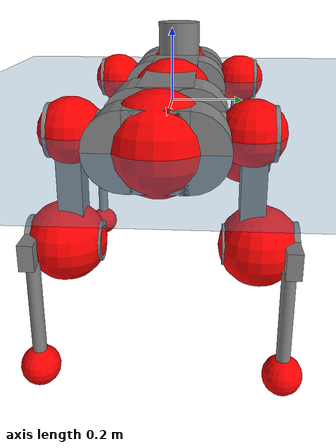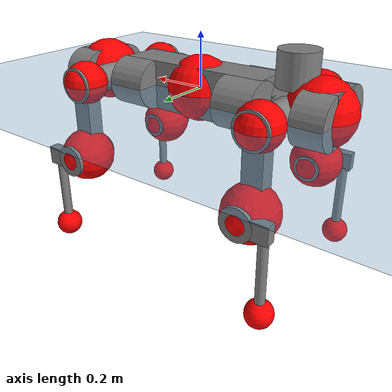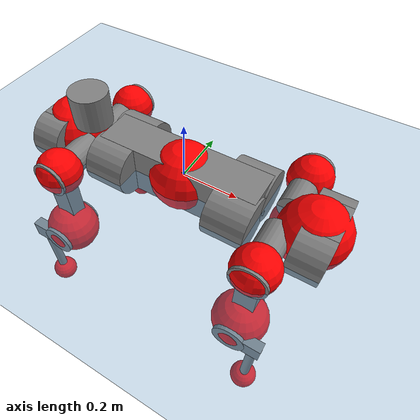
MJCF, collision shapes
<mujoco model="anymal_c">
  <compiler angle="radian" assetdir="assets" balanceinertia="true" inertiafromgeom="false"/>

  <option timestep="0.005" density="1.2" viscosity="2e-05"/>

  <size nkey="1"/>

  <visual>
    <quality shadowsize="8192"/>
    <map shadowclip="0.5"/>
  </visual>

  <default>
    <default class="/">
      <material specular="0" shininess="0.25"/>
      <geom contype="0" conaffinity="0" group="1" solref="-1000 -80"/>
      <site size="0.01 0.005 0.005" group="5"/>
      <general forcelimited="true" forcerange="-80 80" biastype="affine" gainprm="80" biasprm="0 -80 -2"/>
      <default class="anymal_c">
        <joint armature="0.01" damping="0.01" frictionloss="0.1"/>
        <default class="visual">
          <geom type="mesh" group="2"/>
          <default class="visual_zflip"/>
        </default>
        <default class="collision">
          <geom type="cylinder" group="3"/>
          <default class="foot">
            <geom size="0.03 0 0" type="sphere" condim="6" priority="1" friction="0.8 0.02 0.01" solimp="0.015 1 0.03"/>
          </default>
        </default>
      </default>
      <default class="reward_collision_sphere">
        <geom group="5" rgba="1 0 0 1"/>
      </default>
    </default>
  </default>

  <asset>
    <texture type="skybox" colorspace="auto" name="//unnamed_texture_0" builtin="gradient" rgb1="0.95 0.95 0.95" rgb2="0.95 0.95 0.95" width="100" height="600"/>
    <texture type="2d" colorspace="auto" name="texplane" builtin="checker" rgb1="0.345 0.575 0.748" rgb2="0.345 0.575 0.748" markrgb="1 1 1" width="512" height="512"/>
    <texture type="2d" colorspace="linear" name="base" file="base.png"/>
    <texture type="2d" colorspace="linear" name="top_shell" file="top_shell.png"/>
    <texture type="2d" colorspace="linear" name="bottom_shell" file="bottom_shell.png"/>
    <texture type="2d" colorspace="linear" name="remote" file="remote.png"/>
    <texture type="2d" colorspace="linear" name="hatch" file="hatch.png"/>
    <texture type="2d" colorspace="linear" name="handle" file="handle.png"/>
    <texture type="2d" colorspace="linear" name="face" file="face.png"/>
    <texture type="2d" colorspace="linear" name="battery" file="battery.png"/>
    <texture type="2d" colorspace="linear" name="lidar_cage" file="lidar_cage.png"/>
    <texture type="2d" colorspace="linear" name="depth_camera" file="depth_camera.png"/>
    <texture type="2d" colorspace="linear" name="wide_angle_camera" file="wide_angle_camera.png"/>
    <texture type="2d" colorspace="linear" name="lidar" file="lidar.png"/>
    <texture type="2d" colorspace="linear" name="drive" file="drive.png"/>
    <texture type="2d" colorspace="linear" name="hip_l" file="hip_l.png"/>
    <texture type="2d" colorspace="linear" name="shank_l" file="shank_l.png"/>
    <texture type="2d" colorspace="linear" name="foot" file="foot.png"/>
    <texture type="2d" colorspace="linear" name="thigh" file="thigh.png"/>
    <texture type="2d" colorspace="linear" name="shank_r" file="shank_r.png"/>
    <texture type="2d" colorspace="linear" name="hip_r" file="hip_r.png"/>
    <material name="MatPlane" class="/" texture="texplane" texuniform="true" texrepeat="2 2" specular="0.9" shininess="0.5"/>
    <material name="black_plastic" class="/" rgba="0.007 0.007 0.007 1"/>
    <material name="green" class="/" rgba="0.052 0.178 0.033 1"/>
    <material name="red" class="/" rgba="0.178 0.006 0.005 1"/>
    <material name="yellow" class="/" rgba="0.178 0.119 0.006 1"/>
    <material name="lwl" class="/" rgba="0.8 0.8 0.8 1"/>
    <material name="base" class="/" texture="base"/>
    <material name="top_shell" class="/" texture="top_shell"/>
    <material name="bottom_shell" class="/" texture="bottom_shell"/>
    <material name="hip_l" class="/" texture="hip_l"/>
    <material name="thigh" class="/" texture="thigh"/>
    <material name="shank_l" class="/" texture="shank_l"/>
    <material name="foot" class="/" texture="foot"/>
    <material name="hip_r" class="/" texture="hip_r"/>
    <material name="shank" class="/" texture="shank_r"/>
    <material name="hatch" class="/" texture="hatch"/>
    <material name="remote" class="/" texture="remote"/>
    <material name="handle" class="/" texture="handle"/>
    <material name="face" class="/" texture="face"/>
    <material name="depth_camera" class="/" texture="depth_camera"/>
    <material name="wide_angle_camera" class="/" texture="wide_angle_camera"/>
    <material name="battery" class="/" texture="battery"/>
    <material name="lidar_cage" class="/" texture="lidar_cage"/>
    <material name="lidar" class="/" texture="lidar"/>
    <material name="drive" class="/" texture="drive"/>
    <mesh name="base_0" class="/" file="base_0.obj"/>
    <mesh name="base_1" class="/" file="base_1.obj"/>
    <mesh name="base_2" class="/" file="base_2.obj"/>
    <mesh name="base_3" class="/" file="base_3.obj"/>
    <mesh name="base_4" class="/" file="base_4.obj"/>
    <mesh name="base_5" class="/" file="base_5.obj"/>
    <mesh name="top_shell" class="/" file="top_shell.obj"/>
    <mesh name="bottom_shell" class="/" file="bottom_shell.obj"/>
    <mesh name="remote" class="/" file="remote.obj"/>
    <mesh name="handle" class="/" file="handle.obj"/>
    <mesh name="face" class="/" file="face.obj"/>
    <mesh name="wide_angle_camera" class="/" file="wide_angle_camera.obj"/>
    <mesh name="depth_camera" class="/" file="depth_camera.obj"/>
    <mesh name="battery" class="/" file="battery.obj"/>
    <mesh name="lidar_cage" class="/" file="lidar_cage.obj"/>
    <mesh name="lidar" class="/" file="lidar.obj"/>
    <mesh name="drive" class="/" file="drive.obj"/>
    <mesh name="hip_l" class="/" file="hip_l.obj"/>
    <mesh name="thigh" class="/" file="thigh.obj"/>
    <mesh name="shank_l" class="/" file="shank_l.obj"/>
    <mesh name="foot" class="/" file="foot.obj"/>
    <mesh name="hip_r" class="/" file="hip_r.obj"/>
    <mesh name="hatch" class="/" file="hatch.obj"/>
    <mesh name="shank_r" class="/" file="shank_r.obj"/>
  </asset>

  <worldbody>
    <geom name="floor" class="/" size="100 100 0.125" type="plane" group="0" material="MatPlane"/>
    <light name="toplight_shadow" class="/" pos="0 0 5" dir="0.0990148 0.0990148 -0.990148" type="directional" ambient="0.04 0.04 0.04" diffuse="0.55 0.55 0.55" specular="0.12 0.12 0.12"/>
    <light name="toplight_fill" class="/" pos="0 0 5" dir="0.0990148 0.0990148 -0.990148" type="directional" castshadow="false" ambient="0.04 0.04 0.04" diffuse="0.3 0.3 0.3" specular="0.08 0.08 0.08"/>
    <body name="trunk" childclass="anymal_c" pos="0.000236033 -9.82268e-05 -0.000792957" quat="1 -0.000261318 -0.000298111 0.00029615">
      <inertial pos="0.000386004 -0.0010612 0.0486797" quat="0.499978 0.50019 0.499593 0.500238" mass="18.7785" diaginertia="0.728227 0.526532 0.190226"/>
      <joint name="//unnamed_joint_0" type="free" armature="0" damping="0" frictionloss="0"/>
      <geom name="//unnamed_geom_1" class="visual" material="green" mesh="base_0"/>
      <geom name="//unnamed_geom_2" class="visual" material="yellow" mesh="base_1"/>
      <geom name="//unnamed_geom_3" class="visual" material="red" mesh="base_2"/>
      <geom name="//unnamed_geom_4" class="visual" material="black_plastic" mesh="base_3"/>
      <geom name="//unnamed_geom_5" class="visual" material="lwl" mesh="base_4"/>
      <geom name="//unnamed_geom_6" class="visual" material="base" mesh="base_5"/>
      <geom name="trunk_1" class="collision" size="0.286944 0.0692625 0.0890517" type="box"/>
      <geom name="trunk_2" class="collision" size="0.0890517 0.0717361" pos="0.223425 0.067698 0" quat="0.707107 0 0.707107 0"/>
      <geom name="trunk_3" class="collision" size="0.0890517 0.0717361" pos="-0.223425 0.067698 0" quat="0.707107 0 0.707107 0"/>
      <geom name="trunk_4" class="collision" size="0.0890517 0.0717361" pos="0.223425 -0.067698 0" quat="0.707107 0 0.707107 0"/>
      <geom name="trunk_5" class="collision" size="0.0890517 0.0717361" pos="-0.223425 -0.067698 0" quat="0.707107 0 0.707107 0"/>
      <geom name="//unnamed_geom_12" class="visual" material="top_shell" mesh="top_shell"/>
      <geom name="//unnamed_geom_13" class="visual" material="bottom_shell" mesh="bottom_shell"/>
      <geom name="//unnamed_geom_14" class="visual" material="remote" mesh="remote"/>
      <geom name="//unnamed_geom_15" class="visual" material="handle" mesh="handle"/>
      <geom name="//unnamed_geom_16" class="visual" pos="0.425791 0 0" quat="1 0 0 0" material="face" mesh="face"/>
      <geom name="trunk_6" class="collision" size="0.0544205 0.0692625 0.0890517" pos="0.482289 0 0" type="box"/>
      <geom name="//unnamed_geom_18" class="collision" size="0.0890517 0.0544205" pos="0.482289 0.067698 0" quat="0.707107 0 0.707107 0"/>
      <geom name="//unnamed_geom_19" class="collision" size="0.0890517 0.0544205" pos="0.482289 -0.067698 0" quat="0.707107 0 0.707107 0"/>
      <geom name="//unnamed_geom_20" class="visual" pos="0.474223 0 -0.0280375" quat="0.965926 0 0.258819 0" material="depth_camera" mesh="depth_camera"/>
      <geom name="//unnamed_geom_21" class="visual" pos="0.526974 0 0.0145813" material="wide_angle_camera" mesh="wide_angle_camera"/>
      <geom name="//unnamed_geom_22" class="visual_zflip" pos="-0.425791 0 0" quat="0 0 0 1" material="face" mesh="face"/>
      <geom name="trunk_7" class="collision" size="0.0544205 0.0692625 0.0890517" pos="-0.482289 0 0" quat="0 0 0 1" type="box"/>
      <geom name="//unnamed_geom_24" class="collision" size="0.0890517 0.0544205" pos="-0.482289 -0.067698 0" quat="0 -0.707107 0 0.707107"/>
      <geom name="//unnamed_geom_25" class="collision" size="0.0890517 0.0544205" pos="-0.482289 0.067698 0" quat="0 -0.707107 0 0.707107"/>
      <geom name="//unnamed_geom_26" class="visual" pos="-0.474223 0 -0.0280375" quat="0 -0.258819 0 0.965926" material="depth_camera" mesh="depth_camera"/>
      <geom name="//unnamed_geom_27" class="visual_zflip" pos="-0.526974 0 0.0145813" quat="0 0 0 1" material="wide_angle_camera" mesh="wide_angle_camera"/>
      <geom name="//unnamed_geom_28" class="visual" material="battery" mesh="battery"/>
      <geom name="//unnamed_geom_29" class="visual" pos="0 0.0731544 0.0287001" quat="0.683013 -0.183013 0.183013 0.683013" material="depth_camera" mesh="depth_camera"/>
      <geom name="//unnamed_geom_30" class="visual" pos="0 -0.0731544 0.0287001" quat="0.683013 0.183013 0.183013 -0.683013" material="depth_camera" mesh="depth_camera"/>
      <geom name="//unnamed_geom_31" class="visual" pos="-0.373916 0 0.0715916" quat="1 0 0 0" material="lidar_cage" mesh="lidar_cage"/>
      <geom name="trunk_8" class="collision" size="0.0692625 0.0593678" pos="-0.373916 0 0.130034"/>
      <geom name="//unnamed_geom_33" class="visual" pos="-0.373916 -2.36219e-05 0.138508" quat="0.707107 0 0 -0.707107" material="lidar" mesh="lidar"/>
      <geom name="//unnamed_geom_34" class="visual" pos="0.308069 0.100582 -1.19387e-10" quat="0.258819 0.965926 0 0" material="drive" mesh="drive"/>
      <geom name="//unnamed_geom_35" class="visual" pos="0.308069 -0.100582 1.19387e-10" quat="0.258819 -0.965926 0 0" material="drive" mesh="drive"/>
      <geom name="//unnamed_geom_36" class="visual" pos="-0.308069 0.100582 1.19387e-10" quat="0 0 0.965926 -0.258819" material="drive" mesh="drive"/>
      <geom name="//unnamed_geom_37" class="visual" pos="-0.308069 -0.100582 -1.19387e-10" quat="0 0 -0.965926 -0.258819" material="drive" mesh="drive"/>
      <geom name="//unnamed_geom_38" class="visual" pos="0.11916 0 0.0711046" quat="1 0 0 0" material="hatch" mesh="hatch"/>
      <geom name="//unnamed_geom_39" class="reward_collision_sphere" size="0.118736"/>
      <geom name="//unnamed_geom_40" class="reward_collision_sphere" size="0.118736" pos="0.462258 0 0"/>
      <geom name="//unnamed_geom_41" class="reward_collision_sphere" size="0.118736" pos="-0.462258 0 0"/>
      <site name="imu" pos="0.262314 0.00847869 0.0384494" size="0.00989464"/>
      <camera name="track" pos="0 -1.93423 0" quat="0.707107 0.707107 0 0" mode="trackcom"/>
      <camera name="ego_camera" pos="0.462258 0 -0.0389614" quat="-0.5 -0.5 0.5 0.5"/>
      <body name="LF_HIP" pos="0.308469 0.100888 0.000491118" quat="0.258725 0.965951 -0.000186788 -0.000128647">
        <inertial pos="0.058184 -0.0145389 -0.00829342" quat="-0.128005 0.709811 -0.135204 0.67934" mass="2.59672" diaginertia="0.00652725 0.00403494 0.00280841"/>
        <joint name="LF_HAA" pos="0 0 0" axis="0.999996 0.00285043 0.000472101" range="-0.719521 0.470037" armature="0.00978501" damping="0.00684091" frictionloss="0.100788"/>
        <geom name="//unnamed_geom_42" class="visual" pos="0 -7.02299e-06 1.15352e-06" quat="0.258819 -0.965926 0 0" material="hip_l" mesh="hip_l"/>
        <geom name="//unnamed_geom_43" class="visual" pos="0.0615317 -0.0737696 -0.0426421" quat="0.183013 -0.683013 0.683013 0.183013" material="drive" mesh="drive"/>
        <geom name="//unnamed_geom_44" class="collision" size="0.0494732 0.0692625" pos="0.0615317 -0.0115665 -0.00672572" quat="-0.353553 -0.612372 0.612372 -0.353553"/>
        <body name="LF_THIGH" pos="0.0627048 -0.0692042 -0.0415461" quat="0.183453 -0.682991 0.683004 0.182686">
          <inertial pos="0.0317062 0.000109789 -0.240119" quat="0.993304 -0.00501798 -0.0800619 0.083133" mass="2.96961" diaginertia="0.0344564 0.0246271 0.00362878"/>
          <joint name="LF_HFE" pos="0 0 0" axis="0.999999 -0.00100598 -0.00077515" stiffness="0.00458857" range="-3.12742 3.12924" armature="0.00998037" damping="0.00961925" frictionloss="0.102942"/>
          <geom name="//unnamed_geom_45" class="visual" pos="0.00119627 1.88504e-06 0" quat="0.707107 0 0 -0.707107" material="thigh" mesh="thigh"/>
          <geom name="//unnamed_geom_46" class="collision" size="0.0643151 0.0395785" pos="0.0410896 0 0" quat="0.5 0.5 -0.5 -0.5"/>
          <geom name="//unnamed_geom_47" class="collision" size="0.0371049 0.0296839 0.139825" pos="0.0308172 0 -0.137645" quat="0.707107 0 0 -0.707107" type="box"/>
          <geom name="//unnamed_geom_48" class="visual" pos="0.103032 0 -0.2776" quat="1 0 0 0" material="drive" mesh="drive"/>
          <geom name="//unnamed_geom_49" class="collision" size="0.0494732 0.0692625" pos="0.0311254 0 -0.2776" quat="0.707107 0 0.707107 0"/>
          <geom name="//unnamed_geom_50" class="reward_collision_sphere" size="0.0791571" pos="0.025681 0 0"/>
          <body name="LF_SHANK" pos="0.102778 0.000556993 -0.278378" quat="1 -3.51299e-05 -8.65042e-06 -3.3958e-05">
            <inertial pos="0.00538082 -0.0591141 -0.077632" quat="0.992998 -0.115507 -0.00172046 -0.0247114" mass="0.568764" diaginertia="0.0114806 0.00781607 0.000978478"/>
            <joint name="LF_KFE" pos="0 0 0" axis="0.999994 -0.00176887 -0.00285324" range="-3.14981 3.14088" armature="0.00955234" damping="0.0118221" frictionloss="0.0984375"/>
            <geom name="//unnamed_geom_51" class="visual" pos="0.000390078 0.00207991 0" quat="0.707107 0 0 -0.707107" material="shank_l" mesh="shank_l"/>
            <geom name="LF_kfe_act" class="collision" size="0.0593678 0.0197893" pos="0.0205448 0 0" quat="0.5 0.5 -0.5 -0.5"/>
            <geom name="//unnamed_geom_53" class="collision" size="0.0568932 0.0333944 0.0187998" pos="0.0205448 -0.0556081 0" quat="0.5 0.5 -0.5 -0.5" type="box"/>
            <geom name="//unnamed_geom_54" class="visual" pos="0.0134054 -0.0843875 -0.329195" quat="0.382683 0 0 -0.92388" material="foot" mesh="foot"/>
            <geom name="LF_calf" class="collision" size="0.0173156 0.139764" pos="0.0134055 -0.0850577 -0.164597" quat="0.707107 0 0 -0.707107"/>
            <geom name="LF_foot" class="foot" size="0.0296939" pos="0.0134055 -0.0850577 -0.307279" quat="0.707107 0 0 -0.707107"/>
            <geom name="//unnamed_geom_57" class="reward_collision_sphere" size="0.0989464" pos="-0.051362 0 0"/>
            <geom name="//unnamed_geom_58" class="reward_collision_sphere" size="0.0494732" pos="0.0134055 -0.0850577 -0.307279"/>
            <site name="LF_foot" class="foot" pos="0.0134055 -0.0850577 -0.307279" quat="0.707107 0 0 -0.707107" size="0.00989464"/>
          </body>
        </body>
      </body>
      <body name="RF_HIP" pos="0.307271 -0.100928 0.000725992" quat="0.258811 -0.965928 2.38222e-05 -7.19344e-07">
        <inertial pos="0.0589208 0.0132281 -0.00776202" quat="0.132189 0.677577 0.135997 0.710577" mass="2.70189" diaginertia="0.00670848 0.004253 0.0028975"/>
        <joint name="RF_HAA" pos="0 0 0" axis="1 -0.000106455 -9.43361e-05" range="-0.483076 0.724005" armature="0.0101101" damping="0.0079133" frictionloss="0.0946624"/>
        <geom name="//unnamed_geom_59" class="visual" pos="0 7.02294e-06 1.15352e-06" quat="0.258819 0.965926 0 0" material="hip_r" mesh="hip_r"/>
        <geom name="//unnamed_geom_60" class="visual" pos="0.0615317 0.0737696 -0.0426421" quat="0.183013 0.683013 0.683013 -0.183013" material="drive" mesh="drive"/>
        <geom name="//unnamed_geom_61" class="collision" size="0.0494732 0.0692625" pos="0.0615317 0.0115665 -0.00672572" quat="-0.353553 0.612372 0.612372 0.353553"/>
        <body name="RF_THIGH" pos="0.060986 0.0710111 -0.0419934" quat="0.182954 0.682976 0.683017 -0.18319">
          <inertial pos="0.0331549 0.000573134 -0.238186" quat="0.992951 -0.00329375 -0.0817202 0.0857894" mass="2.97407" diaginertia="0.0347061 0.0250021 0.00371722"/>
          <joint name="RF_HFE" pos="0 0 0" axis="1 -0.000217866 0.000186396" stiffness="0.00611974" range="-3.15698 3.13221" armature="0.0101145" damping="0.0105688" frictionloss="0.094137"/>
          <geom name="//unnamed_geom_62" class="visual" pos="0.00119627 1.88504e-06 0" quat="0.707107 0 0 -0.707107" material="thigh" mesh="thigh"/>
          <geom name="//unnamed_geom_63" class="collision" size="0.0643151 0.0395785" pos="0.0410896 0 0" quat="0.5 0.5 0.5 0.5"/>
          <geom name="//unnamed_geom_64" class="collision" size="0.0371049 0.0296839 0.139825" pos="0.0308172 0 -0.137645" quat="0.707107 0 0 0.707107" type="box"/>
          <geom name="//unnamed_geom_65" class="visual" pos="0.103032 0 -0.2776" quat="1 0 0 0" material="drive" mesh="drive"/>
          <geom name="//unnamed_geom_66" class="collision" size="0.0494732 0.0692625" pos="0.0311254 0 -0.2776" quat="0.707107 0 0.707107 0"/>
          <geom name="//unnamed_geom_67" class="reward_collision_sphere" size="0.0791571" pos="0.025681 0 0"/>
          <body name="RF_SHANK" pos="0.103568 0.000571117 -0.277318" quat="1 -0.000143564 0.000334171 -4.99298e-05">
            <inertial pos="0.00571957 0.059279 -0.0784383" quat="0.992784 0.118561 -0.00308097 0.0177049" mass="0.566771" diaginertia="0.0115261 0.00794061 0.000987278"/>
            <joint name="RF_KFE" pos="0 0 0" axis="0.999994 -0.00132361 -0.00314379" range="-3.16097 3.14985" armature="0.0101134" damping="0.0151298" frictionloss="0.0940347"/>
            <geom name="//unnamed_geom_68" class="visual" pos="0.000390076 -0.00207991 0" quat="0.707107 0 0 0.707107" material="shank" mesh="shank_r"/>
            <geom name="RF_kfe_act" class="collision" size="0.0593678 0.0197893" pos="0.0205448 0 0" quat="0.5 0.5 0.5 0.5"/>
            <geom name="//unnamed_geom_70" class="collision" size="0.0568932 0.0333944 0.0187998" pos="0.0205448 0.0556081 0" quat="0.5 0.5 0.5 0.5" type="box"/>
            <geom name="//unnamed_geom_71" class="visual" pos="0.0134056 0.0843875 -0.329195" quat="0.382683 0 0 0.92388" material="foot" mesh="foot"/>
            <geom name="RF_calf" class="collision" size="0.0173156 0.139764" pos="0.0134055 0.0850577 -0.164597" quat="0.707107 0 0 0.707107"/>
            <geom name="RF_foot" class="foot" size="0.0282742" pos="0.0134055 0.0850577 -0.307279" quat="0.707107 0 0 0.707107"/>
            <geom name="//unnamed_geom_74" class="reward_collision_sphere" size="0.0989464" pos="-0.051362 0 0"/>
            <geom name="//unnamed_geom_75" class="reward_collision_sphere" size="0.0494732" pos="0.0134055 0.0850577 -0.307279"/>
            <site name="RF_foot" class="foot" pos="0.0134055 0.0850577 -0.307279" quat="0.707107 0 0 0.707107" size="0.00989464"/>
          </body>
        </body>
      </body>
      <body name="LH_HIP" pos="-0.306327 0.101021 -0.000266554" quat="-7.35678e-05 -7.23327e-06 0.965898 -0.258924">
        <inertial pos="0.0582756 0.0142367 -0.00974279" quat="0.134564 0.680322 0.128371 0.708926" mass="2.74651" diaginertia="0.00699954 0.00423602 0.00297039"/>
        <joint name="LH_HAA" pos="0 0 0" axis="0.999991 0.00298222 0.00297525" stiffness="0.000103464" range="-0.489702 0.704793" armature="0.00969275" damping="0.00119201" frictionloss="0.0994348"/>
        <geom name="//unnamed_geom_76" class="visual" pos="0 7.02294e-06 1.15352e-06" quat="-0.258819 -0.965926 0 0" material="hip_r" mesh="hip_r"/>
        <geom name="//unnamed_geom_77" class="visual" pos="0.0615317 0.0737696 -0.0426421" quat="0.183013 0.683013 0.683013 -0.183013" material="drive" mesh="drive"/>
        <geom name="//unnamed_geom_78" class="collision" size="0.0494732 0.0692625" pos="0.0615317 0.0115665 -0.00672572" quat="-0.353553 0.612372 0.612372 0.353553"/>
        <body name="LH_THIGH" pos="0.0609616 0.0713001 -0.0419412" quat="0.182616 0.682987 0.683066 -0.183304">
          <inertial pos="0.0297701 -0.00077215 -0.240683" quat="0.99274 -0.0052333 -0.0809151 0.0888391" mass="3.01642" diaginertia="0.0338858 0.0252783 0.00363637"/>
          <joint name="LH_HFE" pos="0 0 0" axis="1 -0.000145065 -0.000381803" range="-3.12354 3.14776" armature="0.010009" damping="0.00790671" frictionloss="0.0995987"/>
          <geom name="//unnamed_geom_79" class="visual" pos="0.00119627 1.88504e-06 0" quat="0.707107 0 0 -0.707107" material="thigh" mesh="thigh"/>
          <geom name="//unnamed_geom_80" class="collision" size="0.0643151 0.0395785" pos="0.0410896 0 0" quat="0.5 0.5 -0.5 -0.5"/>
          <geom name="//unnamed_geom_81" class="collision" size="0.0371049 0.0296839 0.139825" pos="0.0308172 0 -0.137645" quat="0.707107 0 0 -0.707107" type="box"/>
          <geom name="//unnamed_geom_82" class="visual" pos="0.103032 0 -0.2776" quat="1 0 0 0" material="drive" mesh="drive"/>
          <geom name="//unnamed_geom_83" class="collision" size="0.0494732 0.0692625" pos="0.0311254 0 -0.2776" quat="0.707107 0 0.707107 0"/>
          <geom name="//unnamed_geom_84" class="reward_collision_sphere" size="0.0791571" pos="0.025681 0 0"/>
          <body name="LH_SHANK" pos="0.103655 -0.00126951 -0.276759" quat="1 -7.51709e-05 -3.45202e-05 -8.06206e-05">
            <inertial pos="0.0046933 0.0600735 -0.0778548" quat="0.99274 0.116961 -0.00172091 0.0279925" mass="0.584325" diaginertia="0.0119668 0.00809599 0.000998547"/>
            <joint name="LH_KFE" pos="0 0 0" axis="0.99999 0.00394376 0.0022451" range="-3.13046 3.14562" armature="0.0105621" damping="0.0139582" frictionloss="0.0961361"/>
            <geom name="//unnamed_geom_85" class="visual" pos="0.000390076 -0.00207991 0" quat="-0.707107 0 0 -0.707107" material="shank" mesh="shank_r"/>
            <geom name="LH_kfe_act" class="collision" size="0.0593678 0.0197893" pos="0.0205448 0 0" quat="0.5 0.5 -0.5 -0.5"/>
            <geom name="//unnamed_geom_87" class="collision" size="0.0568932 0.0333944 0.0187998" pos="0.0205448 0.0556081 0" quat="0.5 0.5 -0.5 -0.5" type="box"/>
            <geom name="//unnamed_geom_88" class="visual" pos="0.0134056 0.0843875 -0.329195" quat="-0.382683 0 0 -0.92388" material="foot" mesh="foot"/>
            <geom name="LH_calf" class="collision" size="0.0173156 0.139764" pos="0.0134055 0.0850577 -0.164597" quat="0.707107 0 0 -0.707107"/>
            <geom name="LH_foot" class="foot" size="0.0294551" pos="0.0134055 0.0850577 -0.307279" quat="0.707107 0 0 -0.707107"/>
            <geom name="//unnamed_geom_91" class="reward_collision_sphere" size="0.0989464" pos="-0.051362 0 0"/>
            <geom name="//unnamed_geom_92" class="reward_collision_sphere" size="0.0494732" pos="0.0134055 0.0850577 -0.307279"/>
            <site name="LH_foot" class="foot" pos="0.0134055 0.0850577 -0.307279" quat="0.707107 0 0 -0.707107" size="0.00989464"/>
          </body>
        </body>
      </body>
      <body name="RH_HIP" pos="-0.306055 -0.100299 -0.00039255" quat="1.21378e-05 -8.78457e-05 -0.965938 -0.258772">
        <inertial pos="0.0589038 -0.0157644 -0.00990852" quat="-0.120641 0.715342 -0.135288 0.674855" mass="2.6491" diaginertia="0.00652915 0.00405934 0.00282072"/>
        <joint name="RH_HAA" pos="0 0 0" axis="0.99997 -0.00665483 -0.00397503" range="-0.746039 0.474897" armature="0.0103442" damping="0.0135883" frictionloss="0.0994386"/>
        <geom name="//unnamed_geom_93" class="visual" pos="0 -7.02299e-06 1.15352e-06" quat="-0.258819 0.965926 0 0" material="hip_l" mesh="hip_l"/>
        <geom name="//unnamed_geom_94" class="visual" pos="0.0615317 -0.0737696 -0.0426421" quat="-0.183013 0.683013 -0.683013 -0.183013" material="drive" mesh="drive"/>
        <geom name="//unnamed_geom_95" class="collision" size="0.0494732 0.0692625" pos="0.0615317 -0.0115665 -0.00672572" quat="0.353553 0.612372 -0.612372 0.353553"/>
        <body name="RH_THIGH" pos="0.0630596 -0.0710026 -0.0422944" quat="-0.183055 0.683062 -0.683016 -0.182775">
          <inertial pos="0.0316588 -0.000780309 -0.23925" quat="0.993108 -0.00521455 -0.0806627 0.0848643" mass="2.99174" diaginertia="0.0347846 0.0253815 0.00366965"/>
          <joint name="RH_HFE" pos="0 0 0" axis="1 -0.000260702 0.00072183" range="-3.15385 3.15039" armature="0.00970052" damping="0.00381593" frictionloss="0.0980063"/>
          <geom name="//unnamed_geom_96" class="visual" pos="0.00119627 1.88504e-06 0" quat="0.707107 0 0 -0.707107" material="thigh" mesh="thigh"/>
          <geom name="//unnamed_geom_97" class="collision" size="0.0643151 0.0395785" pos="0.0410896 0 0" quat="0.5 0.5 0.5 0.5"/>
          <geom name="//unnamed_geom_98" class="collision" size="0.0371049 0.0296839 0.139825" pos="0.0308172 0 -0.137645" quat="0.707107 0 0 0.707107" type="box"/>
          <geom name="//unnamed_geom_99" class="visual" pos="0.103032 0 -0.2776" quat="1 0 0 0" material="drive" mesh="drive"/>
          <geom name="//unnamed_geom_100" class="collision" size="0.0494732 0.0692625" pos="0.0311254 0 -0.2776" quat="0.707107 0 0.707107 0"/>
          <geom name="//unnamed_geom_101" class="reward_collision_sphere" size="0.0791571" pos="0.025681 0 0"/>
          <body name="RH_SHANK" pos="0.103031 0.00107505 -0.277421" quat="1 0.00044819 -0.000382357 0.000127521">
            <inertial pos="0.00621741 -0.0581561 -0.0789347" quat="0.993036 -0.115134 -0.000883698 -0.0249569" mass="0.576723" diaginertia="0.0118087 0.00781652 0.000991606"/>
            <joint name="RH_KFE" pos="0 0 0" axis="1 1.66076e-06 2.09446e-06" stiffness="0.00107001" range="-3.12414 3.15737" armature="0.00996433" damping="0.0150587" frictionloss="0.094046"/>
            <geom name="//unnamed_geom_102" class="visual" pos="0.000390078 0.00207991 0" quat="0.707107 0 0 -0.707107" material="shank_l" mesh="shank_l"/>
            <geom name="RH_kfe_act" class="collision" size="0.0593678 0.0197893" pos="0.0205448 0 0" quat="0.5 0.5 0.5 0.5"/>
            <geom name="//unnamed_geom_104" class="collision" size="0.0568932 0.0333944 0.0187998" pos="0.0205448 -0.0556081 0" quat="0.5 0.5 0.5 0.5" type="box"/>
            <geom name="//unnamed_geom_105" class="visual" pos="0.0134054 -0.0843875 -0.329195" quat="0.382683 0 0 -0.92388" material="foot" mesh="foot"/>
            <geom name="RH_calf" class="collision" size="0.0173156 0.139764" pos="0.0134055 -0.0850577 -0.164597" quat="0.707107 0 0 0.707107"/>
            <geom name="RH_foot" class="foot" size="0.0284766" pos="0.0134055 -0.0850577 -0.307279" quat="0.707107 0 0 0.707107"/>
            <geom name="//unnamed_geom_108" class="reward_collision_sphere" size="0.0989464" pos="-0.051362 0 0"/>
            <geom name="//unnamed_geom_109" class="reward_collision_sphere" size="0.0494732" pos="0.0134055 -0.0850577 -0.307279"/>
            <site name="RH_foot" class="foot" pos="0.0134055 -0.0850577 -0.307279" quat="0.707107 0 0 0.707107" size="0.00989464"/>
          </body>
        </body>
      </body>
    </body>
  </worldbody>

  <contact>
    <pair class="/" geom1="floor" geom2="LF_foot" name="//unnamed_contact_0"/>
    <pair class="/" geom1="floor" geom2="RF_foot" name="//unnamed_contact_1"/>
    <pair class="/" geom1="floor" geom2="LH_foot" name="//unnamed_contact_2"/>
    <pair class="/" geom1="floor" geom2="RH_foot" name="//unnamed_contact_3"/>
  </contact>

  <actuator>
    <general name="LF_HAA" class="/" joint="LF_HAA" forcerange="-79.6513 79.6513" gainprm="81.3795" biasprm="0 -81.3795 -1.92985"/>
    <general name="LF_HFE" class="/" joint="LF_HFE" forcerange="-74.8183 74.8183" gainprm="81.3795" biasprm="0 -81.3795 -1.92985"/>
    <general name="LF_KFE" class="/" joint="LF_KFE" forcerange="-81.2308 81.2308" gainprm="81.3795" biasprm="0 -81.3795 -1.92985"/>
    <general name="RF_HAA" class="/" joint="RF_HAA" forcerange="-79.3596 79.3596" gainprm="81.3795" biasprm="0 -81.3795 -1.92985"/>
    <general name="RF_HFE" class="/" joint="RF_HFE" forcerange="-80.8791 80.8791" gainprm="81.3795" biasprm="0 -81.3795 -1.92985"/>
    <general name="RF_KFE" class="/" joint="RF_KFE" forcerange="-78.5418 78.5418" gainprm="81.3795" biasprm="0 -81.3795 -1.92985"/>
    <general name="LH_HAA" class="/" joint="LH_HAA" forcerange="-79.8722 79.8722" gainprm="81.3795" biasprm="0 -81.3795 -1.92985"/>
    <general name="LH_HFE" class="/" joint="LH_HFE" forcerange="-80.1011 80.1011" gainprm="81.3795" biasprm="0 -81.3795 -1.92985"/>
    <general name="LH_KFE" class="/" joint="LH_KFE" forcerange="-76.9526 76.9526" gainprm="81.3795" biasprm="0 -81.3795 -1.92985"/>
    <general name="RH_HAA" class="/" joint="RH_HAA" forcerange="-78.6463 78.6463" gainprm="81.3795" biasprm="0 -81.3795 -1.92985"/>
    <general name="RH_HFE" class="/" joint="RH_HFE" forcerange="-82.2665 82.2665" gainprm="81.3795" biasprm="0 -81.3795 -1.92985"/>
    <general name="RH_KFE" class="/" joint="RH_KFE" forcerange="-79.4988 79.4988" gainprm="81.3795" biasprm="0 -81.3795 -1.92985"/>
  </actuator>

  <sensor>
    <gyro site="imu" name="imu_angular_velocity"/>
    <velocimeter site="imu" name="imu_linear_velocity"/>
    <framelinvel objtype="site" objname="LF_foot" name="LF_foot_global_linear_velocity"/>
    <framelinvel objtype="site" objname="RF_foot" name="RF_foot_global_linear_velocity"/>
    <framelinvel objtype="site" objname="LH_foot" name="LH_foot_global_linear_velocity"/>
    <framelinvel objtype="site" objname="RH_foot" name="RH_foot_global_linear_velocity"/>
  </sensor>

  <keyframe>
    <key name="home" qpos="0 0 0.55 1 0 0 0 0 0.4 -0.8 0 -0.4 0.8 0 -0.4 0.8 0 0.4 -0.8"/>
  </keyframe>
</mujoco>
